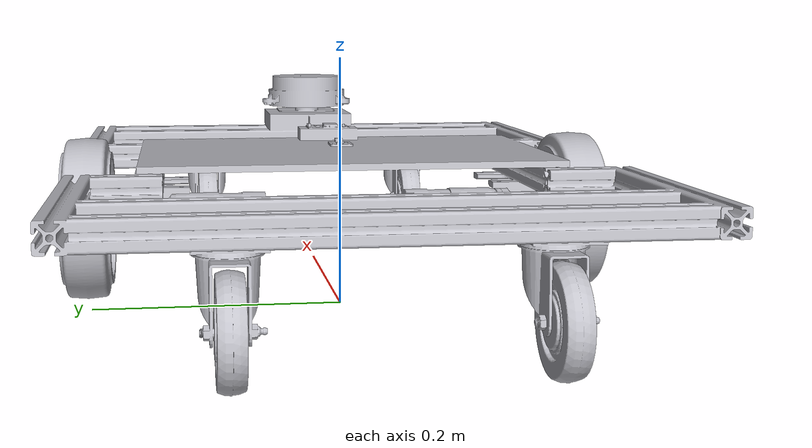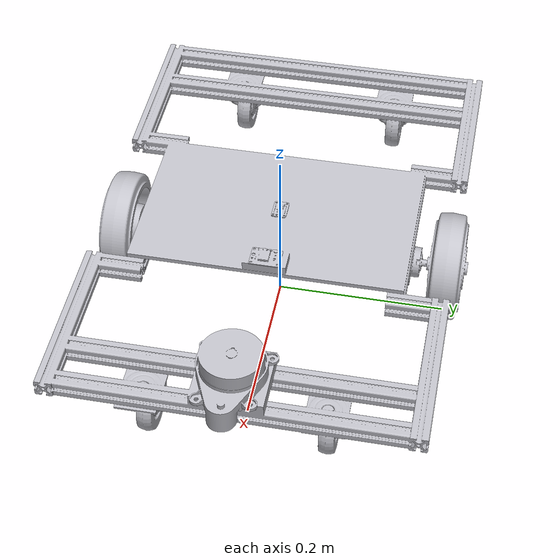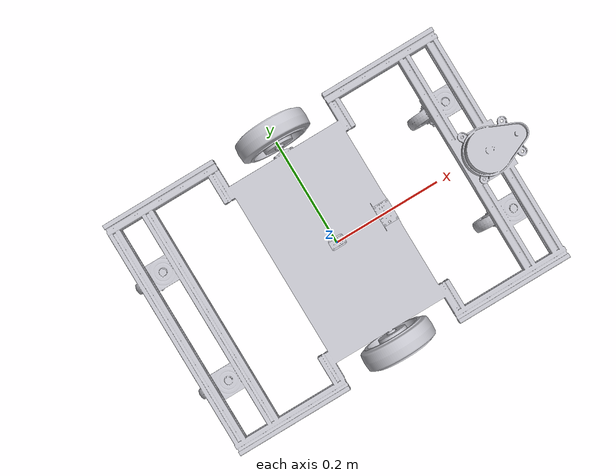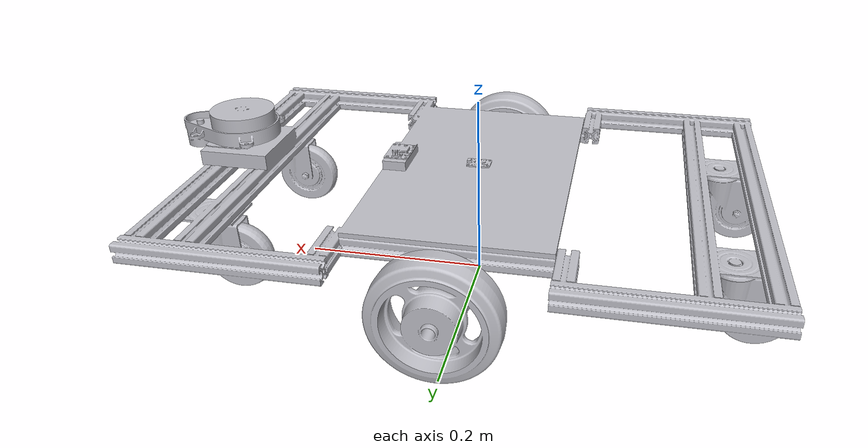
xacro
<?xml version="1.0"?>
<robot xmlns:xacro="http://ros.org/wiki/xacro" name="$(arg robot_name)">
  <xacro:arg name="robot_name" default="mr_robot" />
  <xacro:arg name="sim_ign" default="false" />

  <xacro:include filename="$(find mr_robot_description)/urdf/materials.xacro" />
  <xacro:include filename="$(find mr_robot_description)/urdf/mr_robot.trans" />
  <xacro:include filename="$(find mr_robot_description)/urdf/mr_robot.gazebo" />

  <!-- BASE FOOTPRINT LINK -->

  <link name="base_footprint">
  </link>

  <joint name="base_link_joint" type="fixed">
    <parent link="base_footprint" />
    <child link="base_link" />
    <origin xyz="0 0 0.13" rpy="0 0 0" />
  </joint>

  <link name="base_link">
    <inertial>
      <origin xyz="0.012766113385218509 0.001494146835147567 -0.03149101238341765" rpy="0 0 0" />
      <mass value="12.614502148022185" />
      <inertia ixx="0.186871" iyy="0.487701" izz="0.654211" ixy="0.000719" iyz="0.000234"
        ixz="-0.008931" />
    </inertial>
    <visual>
      <origin xyz="0 0 0" rpy="0 0 0" />
      <geometry>
        <mesh filename="file://$(find mr_robot_description)/meshes/base_link.stl"
          scale="0.001 0.001 0.001" />
      </geometry>
      <material name="silver" />
    </visual>
    <collision>
      <origin xyz="0 0 0" rpy="0 0 0" />
      <geometry>
        <mesh filename="file://$(find mr_robot_description)/meshes/base_link.stl"
          scale="0.001 0.001 0.001" />
      </geometry>
    </collision>
  </link>

  <link name="right_wheel__1">
    <inertial>
      <origin xyz="1.7607591147781841e-15 -0.01799999999998969 -8.17274483436159e-08" rpy="0 0 0" />
      <mass value="2.2573668453470317" />
      <inertia ixx="0.002744" iyy="0.005023" izz="0.002744" ixy="0.0" iyz="-0.0" ixz="-0.0" />
    </inertial>
    <visual>
      <origin xyz="-0.0 0.172825 0.0556" rpy="0 0 0" />
      <geometry>
        <mesh filename="file://$(find mr_robot_description)/meshes/right_wheel__1.stl"
          scale="0.001 0.001 0.001" />
      </geometry>
      <material name="silver" />
    </visual>
    <collision>
      <origin xyz="-0.0 0.172825 0.0556" rpy="0 0 0" />
      <geometry>
        <mesh filename="file://$(find mr_robot_description)/meshes/right_wheel__1.stl"
          scale="0.001 0.001 0.001" />
      </geometry>
    </collision>
  </link>

  <link name="left_wheel_1">
    <inertial>
      <origin xyz="-2.5183111525986615e-15 0.019999999999999296 1.594976928309677e-11" rpy="0 0 0" />
      <mass value="2.257366845347031" />
      <inertia ixx="0.002744" iyy="0.005023" izz="0.002744" ixy="0.0" iyz="-0.0" ixz="-0.0" />
    </inertial>
    <visual>
      <origin xyz="0.0 -0.181075 0.0556" rpy="0 0 0" />
      <geometry>
        <mesh filename="file://$(find mr_robot_description)/meshes/left_wheel_1.stl"
          scale="0.001 0.001 0.001" />
      </geometry>
      <material name="silver" />
    </visual>
    <collision>
      <origin xyz="0.0 -0.181075 0.0556" rpy="0 0 0" />
      <geometry>
        <mesh filename="file://$(find mr_robot_description)/meshes/left_wheel_1.stl"
          scale="0.001 0.001 0.001" />
      </geometry>
    </collision>
  </link>

  <link name="imu_1">
    <inertial>
      <origin xyz="0.0004855581971456934 1.4148081224101791e-05 0.0009685965633060389" rpy="0 0 0" />
      <mass value="0.005695581362858868" />
      <inertia ixx="0.0" iyy="0.0" izz="0.0" ixy="0.0" iyz="-0.0" ixz="-0.0" />
    </inertial>
    <visual>
      <origin xyz="-0.0 -0.0 -0.0" rpy="0 0 0" />
      <geometry>
        <mesh filename="file://$(find mr_robot_description)/meshes/imu_1.stl"
          scale="0.001 0.001 0.001" />
      </geometry>
      <material name="silver" />
    </visual>
    <collision>
      <origin xyz="-0.0 -0.0 -0.0" rpy="0 0 0" />
      <geometry>
        <mesh filename="file://$(find mr_robot_description)/meshes/imu_1.stl"
          scale="0.001 0.001 0.001" />
      </geometry>
    </collision>
  </link>

  <link name="gps_1">
    <inertial>
      <origin xyz="-0.0004788852143099154 0.0009359821785282274 0.0009128297098392937" rpy="0 0 0" />
      <mass value="0.010140975940216021" />
      <inertia ixx="1e-06" iyy="1e-06" izz="1e-06" ixy="0.0" iyz="-0.0" ixz="0.0" />
    </inertial>
    <visual>
      <origin xyz="-0.087 -0.0 -0.0065" rpy="0 0 0" />
      <geometry>
        <mesh filename="file://$(find mr_robot_description)/meshes/gps_1.stl"
          scale="0.001 0.001 0.001" />
      </geometry>
      <material name="silver" />
    </visual>
    <collision>
      <origin xyz="-0.087 -0.0 -0.0065" rpy="0 0 0" />
      <geometry>
        <mesh filename="file://$(find mr_robot_description)/meshes/gps_1.stl"
          scale="0.001 0.001 0.001" />
      </geometry>
    </collision>
  </link>

  <link name="Lidar_1">
    <inertial>
      <origin xyz="0.010770081312650281 6.0979034436917104e-05 0.016953604004055788" rpy="0 0 0" />
      <mass value="1.190968470775162" />
      <inertia ixx="0.000484" iyy="0.000863" izz="0.001091" ixy="-1e-06" iyz="2e-06" ixz="0.000116" />
    </inertial>
    <visual>
      <origin xyz="-0.2625 -0.0 -0.0085" rpy="0 0 0" />
      <geometry>
        <mesh filename="file://$(find mr_robot_description)/meshes/Lidar_1.stl"
          scale="0.001 0.001 0.001" />
      </geometry>
      <material name="silver" />
    </visual>
    <collision>
      <origin xyz="-0.2625 -0.0 -0.0085" rpy="0 0 0" />
      <geometry>
        <mesh filename="file://$(find mr_robot_description)/meshes/Lidar_1.stl"
          scale="0.001 0.001 0.001" />
      </geometry>
    </collision>
  </link>

  <joint name="right_motor_joint" type="continuous">
    <origin xyz="0.0 -0.172825 -0.0556" rpy="0 0 0" />
    <parent link="base_link" />
    <child link="right_wheel__1" />
    <axis xyz="0.0 1.0 0.0" />
  </joint>

  <joint name="left_motor_joint" type="continuous">
    <origin xyz="0.0 0.181075 -0.0556" rpy="0 0 0" />
    <parent link="base_link" />
    <child link="left_wheel_1" />
    <axis xyz="-0.0 1.0 0.0" />
  </joint>

  <joint name="Rigid 15" type="fixed">
    <origin xyz="0.0 0.0 0.0" rpy="0 0 0" />
    <parent link="base_link" />
    <child link="imu_1" />
  </joint>

  <joint name="Rigid 16" type="fixed">
    <origin xyz="0.087 0.0 0.0065" rpy="0 0 0" />
    <parent link="base_link" />
    <child link="gps_1" />
  </joint>

  <joint name="Rigid 17" type="fixed">
    <origin xyz="0.2625 0.0 0.0085" rpy="0 0 0" />
    <parent link="base_link" />
    <child link="Lidar_1" />
  </joint>

</robot>

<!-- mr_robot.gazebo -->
<robot xmlns:xacro="http://www.ros.org/wiki/xacro">

  <xacro:property name="body_color" value="Gazebo/Silver" />
  <xacro:property name="wheel_color" value="Gazebo/Black" />
  <xacro:property name="lidar_color" value="Gazebo/Blue" />

  <!-- Link references with robot_name prefix -->
  <gazebo reference="$(arg robot_name)base_link">
    <material>${body_color}</material>
    <mu1>0.2</mu1>
    <mu2>0.2</mu2>
    <self_collide>true</self_collide>
    <gravity>true</gravity>
  </gazebo>

  <gazebo reference="$(arg robot_name)joint_tire_right">
    <material>${wheel_color}</material>
    <mu1>0.2</mu1>
    <mu2>0.2</mu2>
    <self_collide>true</self_collide>
  </gazebo>

  <gazebo reference="$(arg robot_name)joint_tire_left">
    <material>${wheel_color}</material>
    <mu1>0.2</mu1>
    <mu2>0.2</mu2>
    <self_collide>true</self_collide>
  </gazebo>

  <gazebo reference="$(arg robot_name)imu_1">
    <material>${body_color}</material>
    <mu1>0.2</mu1>
    <mu2>0.2</mu2>
    <self_collide>true</self_collide>
    <sensor name="$(arg robot_name)imu_sensor" type="imu">
      <always_on>1</always_on>
      <update_rate>100</update_rate>
      <ignition_frame_id>$(arg robot_name)imu_sensor</ignition_frame_id>
      <visualize>true</visualize>
      <topic>/$(arg robot_name)/imu</topic>
    </sensor>
  </gazebo>

  <gazebo reference="$(arg robot_name)gps_1">
    <material>${body_color}</material>
    <mu1>0.2</mu1>
    <mu2>0.2</mu2>
    <self_collide>true</self_collide>
  </gazebo>

  <gazebo reference="$(arg robot_name)Lidar_1">
    <material>${lidar_color}</material>
    <mu1>0.2</mu1>
    <mu2>0.2</mu2>
    <self_collide>true</self_collide>
    <sensor name="$(arg robot_name)gpu_lidar" type="gpu_lidar">
      <topic>/$(arg robot_name)/scan</topic>
      <update_rate>10</update_rate>
      <ignition_frame_id>$(arg robot_name)Lidar_1</ignition_frame_id>
      <lidar>
        <scan>
          <horizontal>
            <samples>360</samples>
            <resolution>1</resolution>
            <min_angle>-3.14</min_angle>
            <max_angle>3.14</max_angle>
          </horizontal>
        </scan>
        <range>
          <min>0.3</min>
          <max>12</max>
          <resolution>0.01</resolution>
        </range>
        <noise>
          <type>gaussian</type>
          <mean>0.0</mean>
          <stddev>0.001</stddev>
        </noise>
      </lidar>
      <visualize>true</visualize>
    </sensor>
  </gazebo>

  <!-- Sensor and Control Plugins -->
  <gazebo>
    <plugin filename="ignition-gazebo-sensors-system" name="ignition::gazebo::systems::Sensors">
      <render_engine>ogre2</render_engine>
    </plugin>

    <plugin name="slotcar" filename="libslotcar.so">
      <name>$(arg robot_name)</name>
      <nominal_drive_speed>0.5</nominal_drive_speed>
      <nominal_drive_acceleration>0.25</nominal_drive_acceleration>
      <max_drive_acceleration>0.75</max_drive_acceleration>
      <nominal_turn_speed>0.6</nominal_turn_speed>
      <nominal_turn_acceleration>1.5</nominal_turn_acceleration>
      <max_turn_acceleration>2.0</max_turn_acceleration>
      <tire_radius>0.1</tire_radius>
      <base_width>0.3206</base_width>
      <stop_distance>0.75</stop_distance>
      <stop_radius>0.75</stop_radius>
      <reversible>true</reversible>
      <nominal_voltage>12.0</nominal_voltage>
      <nominal_capacity>24.0</nominal_capacity>
      <charging_current>5.0</charging_current>
      <mass>20.0</mass>
      <inertia>10.0</inertia>
      <friction_coefficient>0.22</friction_coefficient>
      <nominal_power>20.0</nominal_power>
    </plugin>

    <plugin filename="ignition-gazebo-imu-system" name="ignition::gazebo::systems::Imu">
    </plugin>

    <plugin filename="ignition-gazebo-joint-state-publisher-system"
      name="ignition::gazebo::systems::JointStatePublisher">
      <topic>/$(arg robot_name)/joint_states</topic>
    </plugin>

    <!-- Odometry Publisher Plugin -->
    <plugin filename="libignition-gazebo6-odometry-publisher-system"
      name="ignition::gazebo::systems::OdometryPublisher">
      <odom_frame>$(arg robot_name)odom</odom_frame>
      <robot_base_frame>$(arg robot_name)base_footprint</robot_base_frame>
      <odom_topic>/$(arg robot_name)/odom</odom_topic>
      <tf_topic>/$(arg robot_name)/tf</tf_topic>
      <dimensions>2</dimensions>
      <odom_publish_frequency>10</odom_publish_frequency>
    </plugin>
  </gazebo>

</robot>
